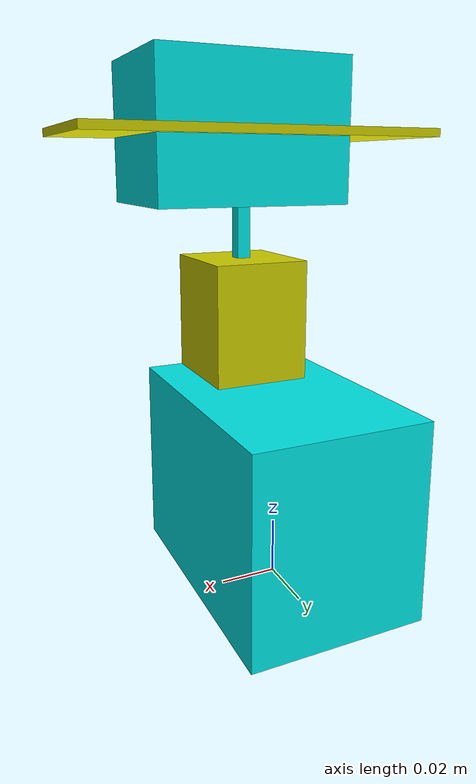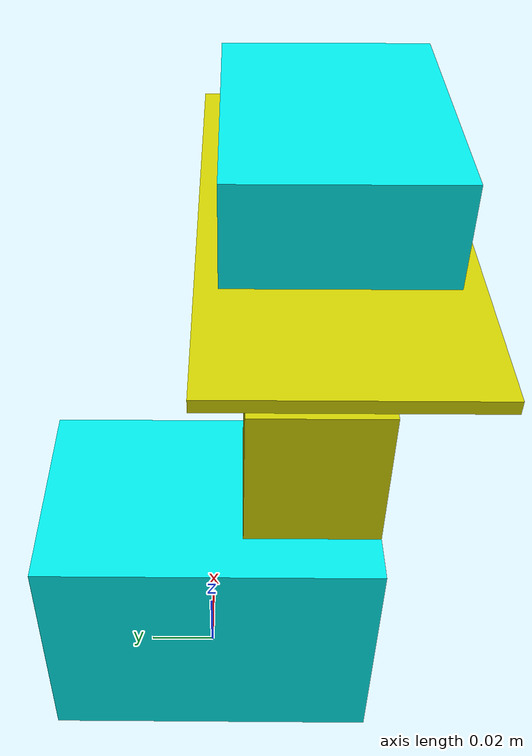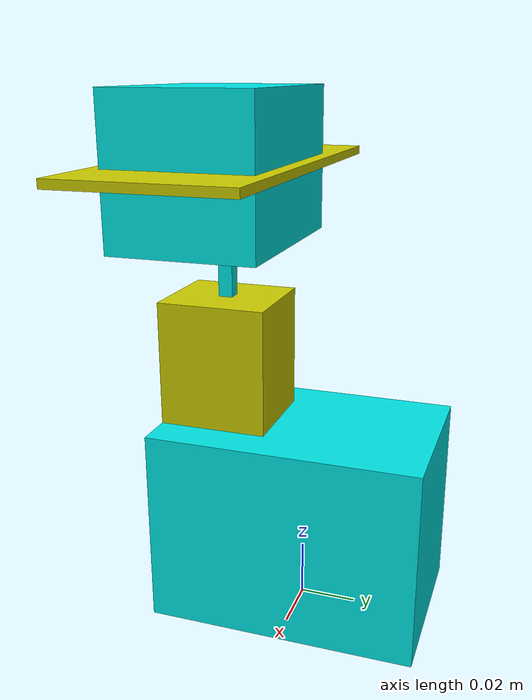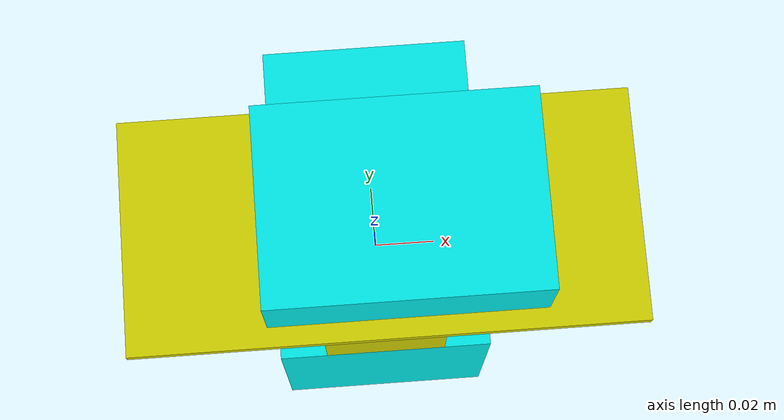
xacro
<robot name="tama">
  <!-- * * * Link Definitions * * * -->
  	<link name="world" />
 	 <link name="taban">
		<visual>
		    <origin xyz="0 0 0.035" rpy="0 0 0"/>
			<geometry>
				<box size="0.0625 0.095 0.07"/>
			</geometry>
			<material name="Cyan1">
	       		<color rgba="0 0.9 0.9 1.0"/>
	     	</material>
		</visual>
		<inertial>
				<mass value="1e-5" />
				<origin xyz="0 0 0" rpy="0 0 0"/>
				<inertia ixx="1e-6" ixy="0" ixz="0" iyy="1e-6" iyz="0" izz="1e-6" />
		</inertial>
	</link>

 	<link name="pan_direk">
		<visual>
		    <origin xyz="0 0 0" rpy="0 0 0"/>
			<geometry>
				<box size="0.035 0.038 0.044"/>
			</geometry>
			<material name="Yellow2">
	       		<color rgba="0.8 0.8 0 1.0"/>
	     	</material>
		</visual>
		<inertial>
				<mass value="1e-5" />
				<origin xyz="0 0 0" rpy="0 0 0"/>
				<inertia ixx="1e-6" ixy="0" ixz="0" iyy="1e-6" iyz="0" izz="1e-6" />
		</inertial>
	</link>

	<link name="tilt_direk">
		<visual>
		    <origin xyz="-0.022 0 0" rpy="0 -1.57 0"/>
			<geometry>
				<box size="0.005 0.005 0.044"/>
			</geometry>
			<material name="Cyan1">
	       		<color rgba="0 0.9 0.9 1.0"/>
	     	</material>
		</visual>
		<inertial>
				<mass value="1e-5" />
				<origin xyz="0 0 0" rpy="0 0 0"/>
				<inertia ixx="1e-6" ixy="0" ixz="0" iyy="1e-6" iyz="0" izz="1e-6" />
			</inertial>
	</link>

	<link name="hokuyo_taban">
		<visual>
		    <origin xyz="0 0 0" rpy="0 -1.57 0"/>
			<geometry>
				<box size="0.13 0.06 0.003 "/>
			</geometry>
			<material name="Yellow2">
	       		<color rgba="0.8 0.8 0 1.0"/>
	     	</material>
		</visual>
		<inertial>
				<mass value="1e-5" />
				<origin xyz="0 0 0" rpy="0 0 0"/>
				<inertia ixx="1e-6" ixy="0" ixz="0" iyy="1e-6" iyz="0" izz="1e-6" />
			</inertial>
	</link>

	<link name="hokuyo_link">
	<collision>
	<origin xyz="0 0 -0.05" rpy="0 0 0"/>
	<geometry>
	<box size="0.1 0.1 0.08"/>
	</geometry>
	</collision>

	<visual>
		<origin xyz="-0.035 0 0" rpy="0 0 0"/>
		<geometry>
			<box size="0.07 0.05 0.05"/>
		</geometry>
		<material name="Cyan1">
	       	<color rgba="0 0.9 0.9 1.0"/>
	     	</material>
	</visual>

	<inertial>
	<mass value="1e-5" />
	<origin xyz="0 0 0" rpy="0 0 0"/>
	<inertia ixx="1e-6" ixy="0" ixz="0" iyy="1e-6" iyz="0" izz="1e-6" />
	</inertial>
	</link>

	<joint name="virtual_joint" type="fixed">
    	<parent link="world"/>
    	<child link="taban"/>>
    	<origin xyz="0 0 0" rpy="0 0 0"/>
    	<dynamics damping="1.0"/>
  	</joint>

	<joint name="pan_joint" type="revolute">
    	<parent link="taban"/>
    	<child link="pan_direk"/>
    	<origin xyz="0 -0.0285 0.092" rpy="0 0 0"/>
    	<dynamics damping="1.0"/>
    	<axis xyz="0 0 1"/>
    	<limit lower="-3.1416" upper="3.1416" effort="10" velocity="3"/>
  	</joint>

	<joint name="tilt_joint" type="revolute">
    	<parent link="pan_direk"/>
    	<child link="tilt_direk"/>
    	<origin xyz="0 0 0.022" rpy="0 1.57 0"/>
    	<axis xyz="0 0 1"/>
    	<limit lower="-0.8727" upper="0.8727" effort="10" velocity="3"/>
    	<dynamics damping="1.0"/>
  	</joint>

	<joint name="hokuyo_base_joint" type="fixed">
    	<parent link="tilt_direk"/>
    	<child link="hokuyo_taban"/>
    	<origin xyz="-0.0450 0 0" rpy="0 0 0"/>
    	<dynamics damping="1.0"/>
  	</joint>

	<joint name="hokuyo_joint" type="fixed">
			<origin xyz="0 0 0.04" rpy="0 -1.57 0"/>
			<parent link="hokuyo_taban"/>
			<child link="hokuyo_link"/>
			<dynamics damping="1.0"/>
	</joint>

	<gazebo reference="taban">
                <material>Gazebo/Orange</material>
        </gazebo>

        <gazebo reference="pan_direk">
                <material>Gazebo/Blue</material>
        </gazebo>

        <gazebo reference="tilt_direk">
                <material>Gazebo/White</material>
        </gazebo>

        <gazebo reference="hokuyo_taban">
                <material>Gazebo/Orange</material>
        </gazebo>

	<!-- gazebo reference for hokuyo-->
	<gazebo reference="hokuyo_link">
			<sensor type="gpu_ray" name="hokuyo_sensor">
				<pose>0 0 0 0 0 0</pose>
				<update_rate>10</update_rate>

				<ray>
					<scan>
						<horizontal>
							<samples>640</samples>
							<resolution>1</resolution>
							<min_angle>-1.57</min_angle>
							<max_angle>1.57</max_angle>
						</horizontal>
					</scan>
					<range>
						<min>0.02</min>
						<max>4.0</max>
						<resolution>0.00628318531</resolution>
					</range>
					<noise>
						<type>gaussian</type>
						<mean>0.0</mean>
						<stddev>0.01</stddev>
					</noise>
				</ray>

				<plugin name="hokuyo_controller" filename="libgazebo_ros_gpu_laser.so">
					<topicName>hokuyo/scan</topicName>
					<frameName>hokuyo_link</frameName>
				</plugin>
			</sensor>
		</gazebo>

</robot>
